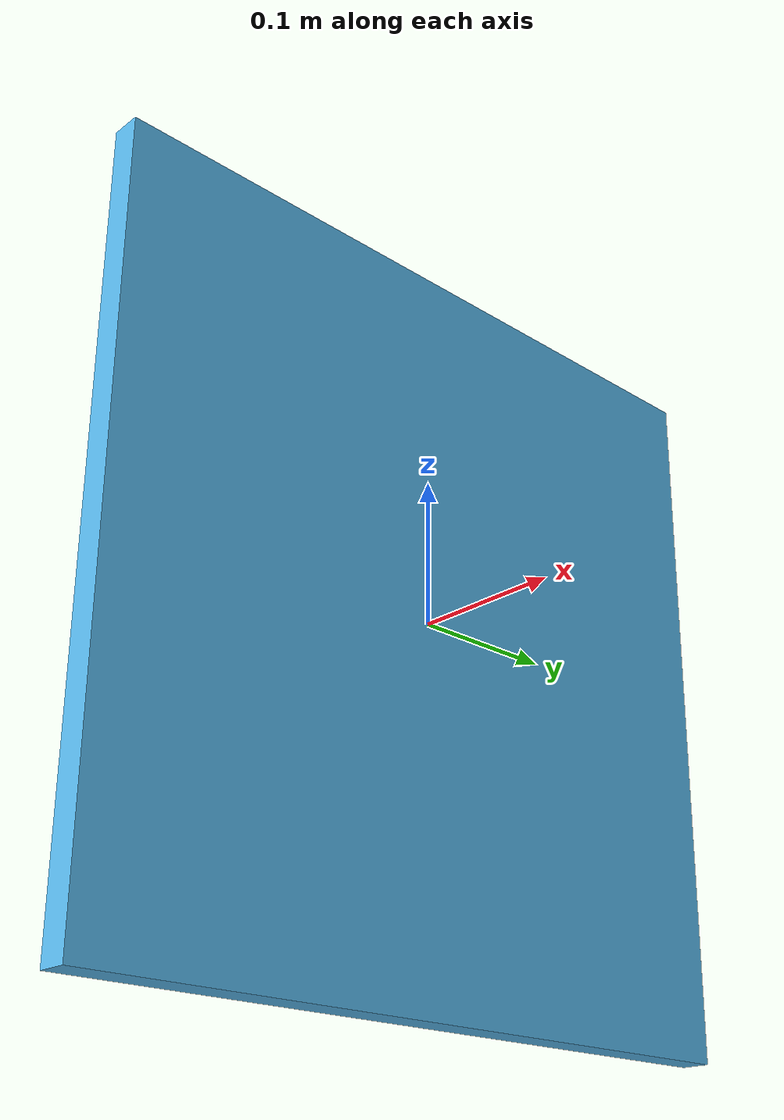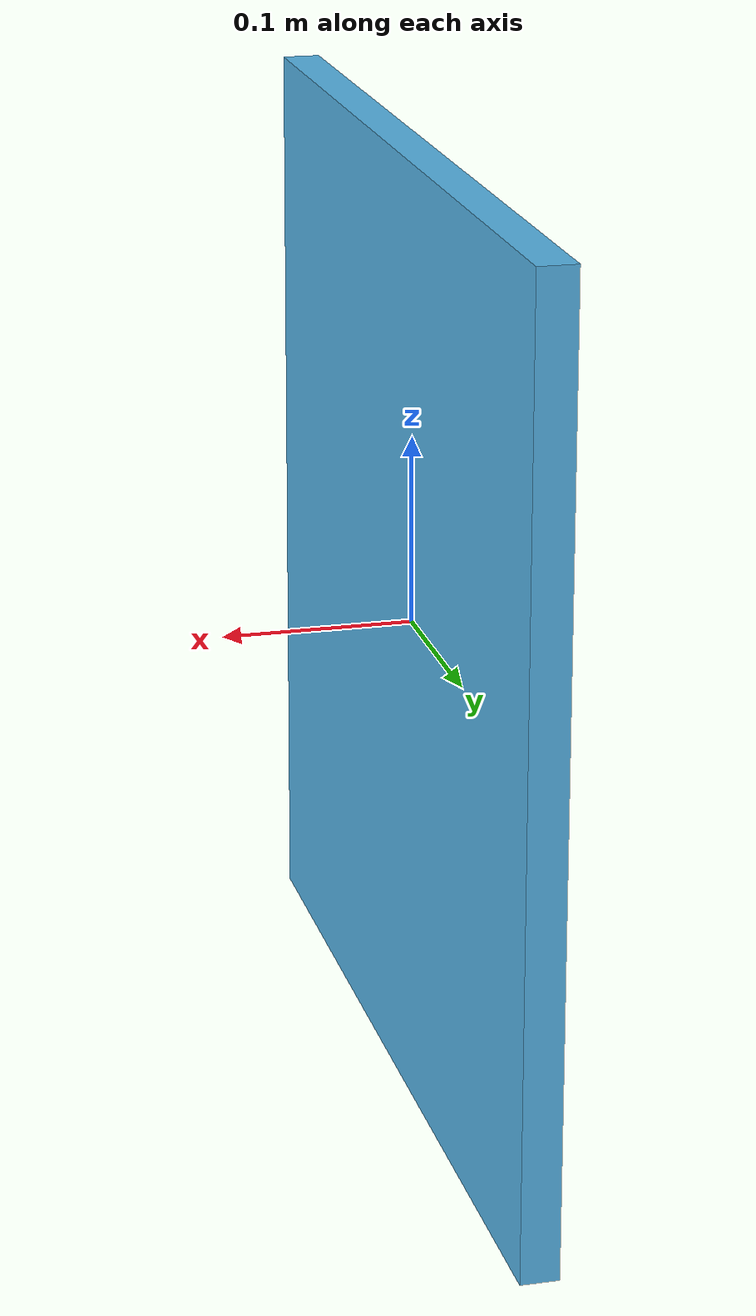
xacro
<?xml version="1.0"?>

<robot name="april_50x50cm_A0_1024px" xmlns:xacro="http://www.ros.org/wiki/xacro">

  <xacro:macro name="april_50x50cm_A0_1024px" params="parent name scaling *origin">

    <link name="${name}_link">
      <inertial>
        <mass value="0.5" />
        <origin xyz="0 0 0" rpy="0 -0 0" />
        <inertia ixx="0.00265" ixy="0" ixz="0" iyy="0.00446" iyz="0" izz="0.00446" />
      </inertial>
      <visual>
        <origin xyz="0 0 0" rpy="0 -0 0" />
        <geometry>
          <mesh filename="package://hector_components_description/meshes/kalibr_targets/april_50x50cm_A0_1024px.dae" scale="${scaling} ${scaling} ${scaling}" />
        </geometry>
      </visual>
      <collision>
        <origin xyz="0 0 0" rpy="0 -0 0" />
        <geometry>
          <mesh filename="package://hector_components_description/meshes/kalibr_targets/april_50x50cm_A0_1024px.dae" scale="${scaling} ${scaling} ${scaling}" />
        </geometry>
      </collision>
    </link>

    <joint name="${name}_checkerboard_joint" type="fixed">
      <parent link="${parent}"/>
      <child link="${name}_link"/>
      <xacro:insert_block name="origin"/>
    </joint>

    <gazebo reference="${name}_link">
      <static>true</static>
      <turnGravityOff>true</turnGravityOff>
    </gazebo>

  </xacro:macro>

  <link name="tag_base" />

  <xacro:april_50x50cm_A0_1024px name="calibration_target" parent="tag_base" scaling="1.0">
    <origin xyz="0 0 0" rpy="0 0 0" />
  </xacro:april_50x50cm_A0_1024px>

  <gazebo reference="tag_base">
    <static>true</static>
    <turnGravityOff>true</turnGravityOff>
  </gazebo>

</robot>
